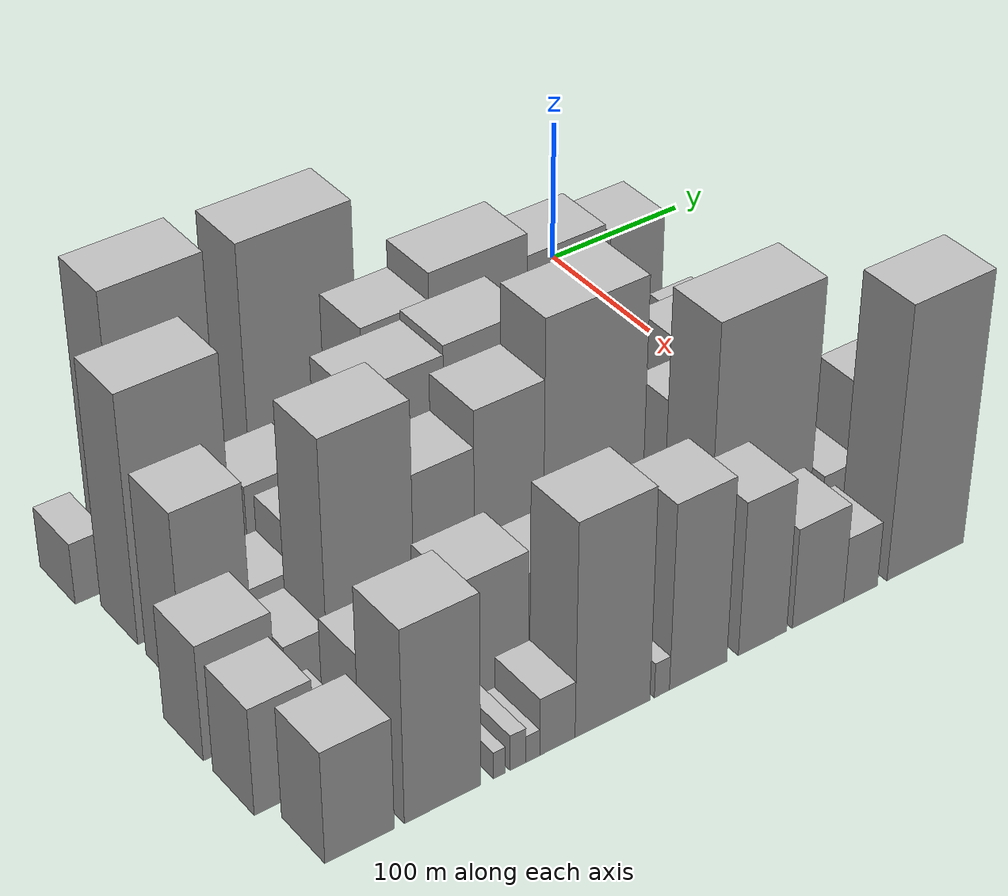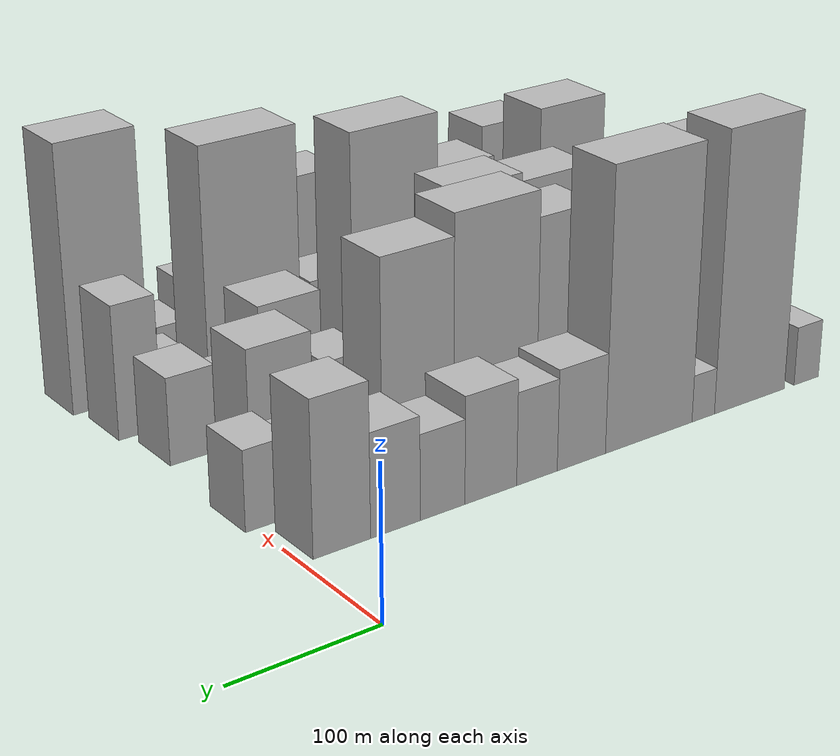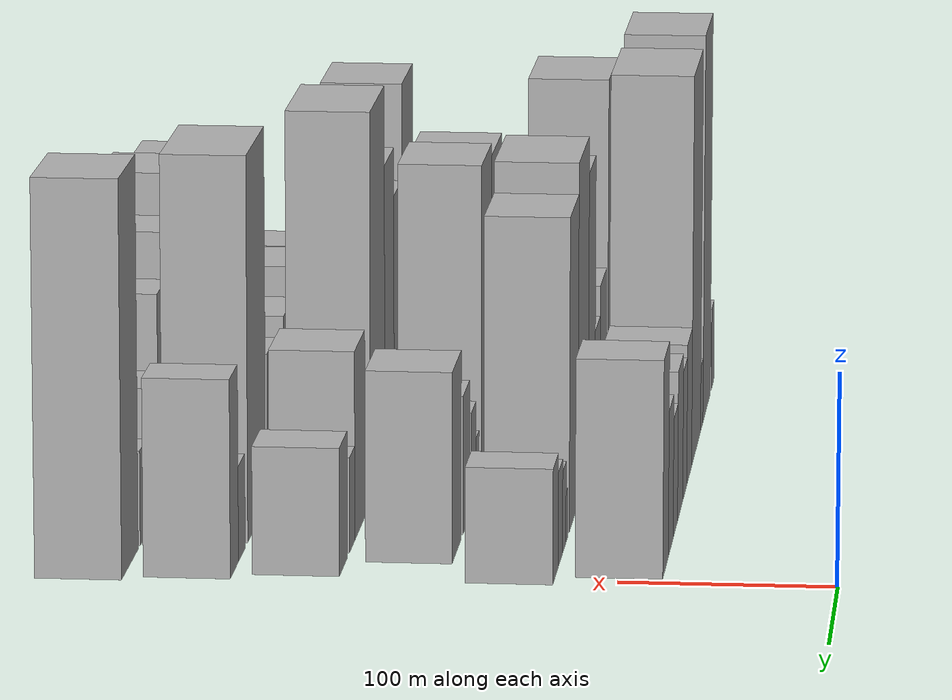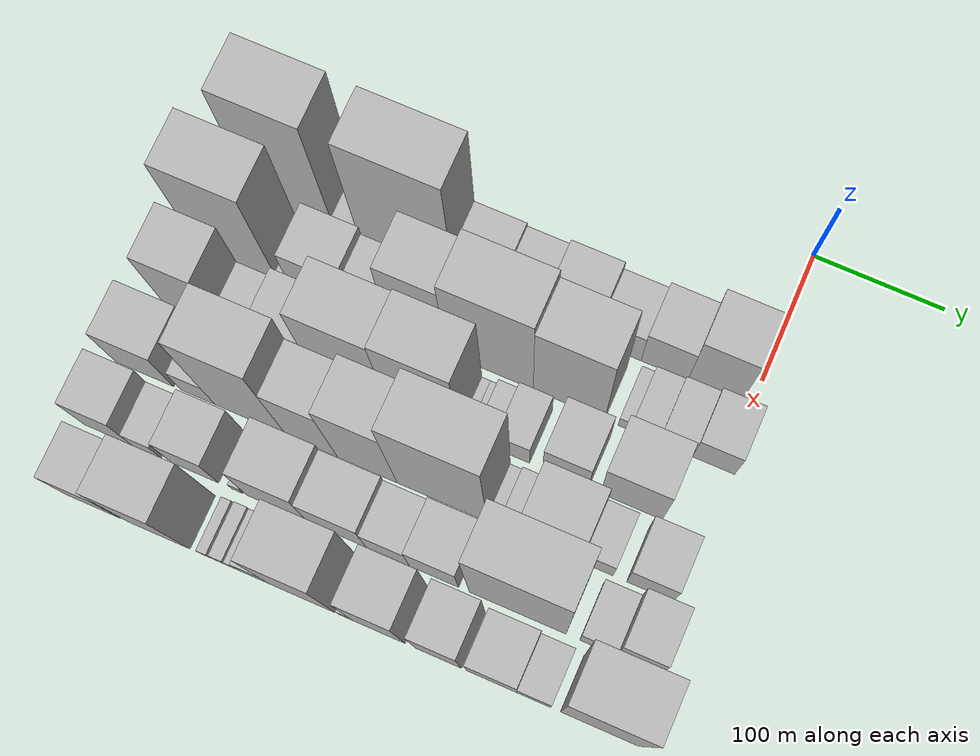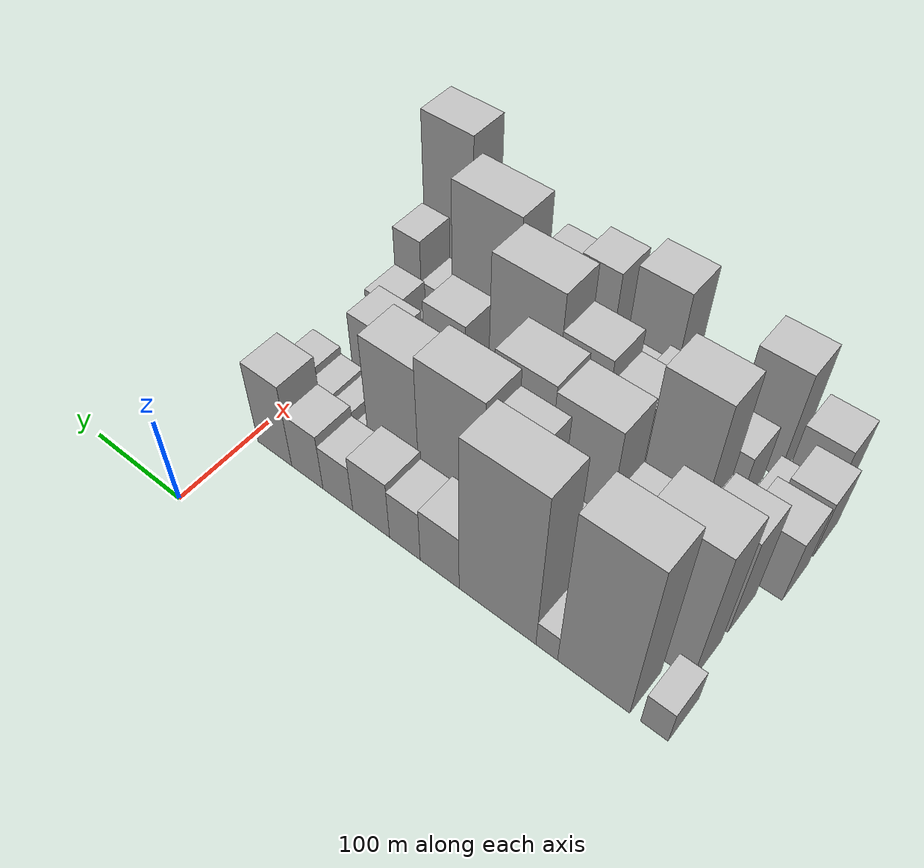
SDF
<sdf version="1.6">
 <world name="default">
  <model name="building_11">
   <static>1</static>
   <pose>100.0000 -402.8972 0 0.000000 0.000000 0.000000</pose>
   <link name="link">
    <pose>0 0 21.00 0 0 0</pose>
    <collision name="collision"><geometry><box><size>40.0000 22.8785 42.0000</size></box></geometry></collision>
    <visual name="visual">
     <cast_shadows>0</cast_shadows>
     <geometry><box><size>40.0000 22.8785 42.0000</size></box></geometry>
     <material>
      <script>
       <uri>model://HANNAS_wall/materials/scripts</uri>
       <uri>model://HANNAS_wall/materials/textures</uri>
       <name>vrc/HANNAS_wall</name>
      </script>
     </material>
    </visual>
   </link>
  </model>
  <model name="building_12">
   <static>1</static>
   <pose>100.0000 -350.8258 0 0.000000 0.000000 0.000000</pose>
   <link name="link">
    <pose>0 0 97.50 0 0 0</pose>
    <collision name="collision"><geometry><box><size>40.0000 63.2641 195.0000</size></box></geometry></collision>
    <visual name="visual">
     <cast_shadows>0</cast_shadows>
     <geometry><box><size>40.0000 63.2641 195.0000</size></box></geometry>
     <material>
      <script>
       <uri>model://HANNAS_wall/materials/scripts</uri>
       <uri>model://HANNAS_wall/materials/textures</uri>
       <name>vrc/HANNAS_wall</name>
      </script>
     </material>
    </visual>
   </link>
  </model>
  <model name="building_13">
   <static>1</static>
   <pose>100.0000 -309.3553 0 0.000000 0.000000 0.000000</pose>
   <link name="link">
    <pose>0 0 16.50 0 0 0</pose>
    <collision name="collision"><geometry><box><size>40.0000 19.6770 33.0000</size></box></geometry></collision>
    <visual name="visual">
     <cast_shadows>0</cast_shadows>
     <geometry><box><size>40.0000 19.6770 33.0000</size></box></geometry>
     <material>
      <script>
       <uri>model://HANNAS_wall/materials/scripts</uri>
       <uri>model://HANNAS_wall/materials/textures</uri>
       <name>vrc/HANNAS_wall</name>
      </script>
     </material>
    </visual>
   </link>
  </model>
  <model name="building_14">
   <static>1</static>
   <pose>100.0000 -262.9560 0 0.000000 0.000000 0.000000</pose>
   <link name="link">
    <pose>0 0 96.00 0 0 0</pose>
    <collision name="collision"><geometry><box><size>40.0000 73.1216 192.0000</size></box></geometry></collision>
    <visual name="visual">
     <cast_shadows>0</cast_shadows>
     <geometry><box><size>40.0000 73.1216 192.0000</size></box></geometry>
     <material>
      <script>
       <uri>model://HANNAS_wall/materials/scripts</uri>
       <uri>model://HANNAS_wall/materials/textures</uri>
       <name>vrc/HANNAS_wall</name>
      </script>
     </material>
    </visual>
   </link>
  </model>
  <model name="building_15">
   <static>1</static>
   <pose>100.0000 -206.9353 0 0.000000 0.000000 0.000000</pose>
   <link name="link">
    <pose>0 0 34.50 0 0 0</pose>
    <collision name="collision"><geometry><box><size>40.0000 38.9199 69.0000</size></box></geometry></collision>
    <visual name="visual">
     <cast_shadows>0</cast_shadows>
     <geometry><box><size>40.0000 38.9199 69.0000</size></box></geometry>
     <material>
      <script>
       <uri>model://HANNAS_wall/materials/scripts</uri>
       <uri>model://HANNAS_wall/materials/textures</uri>
       <name>vrc/HANNAS_wall</name>
      </script>
     </material>
    </visual>
   </link>
  </model>
  <model name="building_16">
   <static>1</static>
   <pose>100.0000 -171.5780 0 0.000000 0.000000 0.000000</pose>
   <link name="link">
    <pose>0 0 31.50 0 0 0</pose>
    <collision name="collision"><geometry><box><size>40.0000 31.7946 63.0000</size></box></geometry></collision>
    <visual name="visual">
     <cast_shadows>0</cast_shadows>
     <geometry><box><size>40.0000 31.7946 63.0000</size></box></geometry>
     <material>
      <script>
       <uri>model://HANNAS_wall/materials/scripts</uri>
       <uri>model://HANNAS_wall/materials/textures</uri>
       <name>vrc/HANNAS_wall</name>
      </script>
     </material>
    </visual>
   </link>
  </model>
  <model name="building_17">
   <static>1</static>
   <pose>100.0000 -135.9647 0 0.000000 0.000000 0.000000</pose>
   <link name="link">
    <pose>0 0 36.00 0 0 0</pose>
    <collision name="collision"><geometry><box><size>40.0000 39.4321 72.0000</size></box></geometry></collision>
    <visual name="visual">
     <cast_shadows>0</cast_shadows>
     <geometry><box><size>40.0000 39.4321 72.0000</size></box></geometry>
     <material>
      <script>
       <uri>model://HANNAS_wall/materials/scripts</uri>
       <uri>model://HANNAS_wall/materials/textures</uri>
       <name>vrc/HANNAS_wall</name>
      </script>
     </material>
    </visual>
   </link>
  </model>
  <model name="building_18">
   <static>1</static>
   <pose>100.0000 -99.7300 0 0.000000 0.000000 0.000000</pose>
   <link name="link">
    <pose>0 0 28.50 0 0 0</pose>
    <collision name="collision"><geometry><box><size>40.0000 33.0373 57.0000</size></box></geometry></collision>
    <visual name="visual">
     <cast_shadows>0</cast_shadows>
     <geometry><box><size>40.0000 33.0373 57.0000</size></box></geometry>
     <material>
      <script>
       <uri>model://HANNAS_wall/materials/scripts</uri>
       <uri>model://HANNAS_wall/materials/textures</uri>
       <name>vrc/HANNAS_wall</name>
      </script>
     </material>
    </visual>
   </link>
  </model>
  <model name="building_19">
   <static>1</static>
   <pose>100.0000 -65.4250 0 0.000000 0.000000 0.000000</pose>
   <link name="link">
    <pose>0 0 34.50 0 0 0</pose>
    <collision name="collision"><geometry><box><size>40.0000 35.5727 69.0000</size></box></geometry></collision>
    <visual name="visual">
     <cast_shadows>0</cast_shadows>
     <geometry><box><size>40.0000 35.5727 69.0000</size></box></geometry>
     <material>
      <script>
       <uri>model://HANNAS_wall/materials/scripts</uri>
       <uri>model://HANNAS_wall/materials/textures</uri>
       <name>vrc/HANNAS_wall</name>
      </script>
     </material>
    </visual>
   </link>
  </model>
  <model name="building_20">
   <static>1</static>
   <pose>100.0000 -27.6505 0 0.000000 0.000000 0.000000</pose>
   <link name="link">
    <pose>0 0 51.00 0 0 0</pose>
    <collision name="collision"><geometry><box><size>40.0000 39.9763 102.0000</size></box></geometry></collision>
    <visual name="visual">
     <cast_shadows>0</cast_shadows>
     <geometry><box><size>40.0000 39.9763 102.0000</size></box></geometry>
     <material>
      <script>
       <uri>model://HANNAS_wall/materials/scripts</uri>
       <uri>model://HANNAS_wall/materials/textures</uri>
       <name>vrc/HANNAS_wall</name>
      </script>
     </material>
    </visual>
   </link>
  </model>
  <model name="building_53">
   <static>1</static>
   <pose>149.0000 -372.3541 0 0.000000 0.000000 0.000000</pose>
   <link name="link">
    <pose>0 0 84.00 0 0 0</pose>
    <collision name="collision"><geometry><box><size>40.0000 61.9415 168.0000</size></box></geometry></collision>
    <visual name="visual">
     <cast_shadows>0</cast_shadows>
     <geometry><box><size>40.0000 61.9415 168.0000</size></box></geometry>
     <material>
      <script>
       <uri>model://HANNAS_wall/materials/scripts</uri>
       <uri>model://HANNAS_wall/materials/textures</uri>
       <name>vrc/HANNAS_wall</name>
      </script>
     </material>
    </visual>
   </link>
  </model>
  <model name="building_54">
   <static>1</static>
   <pose>149.0000 -336.5656 0 0.000000 0.000000 0.000000</pose>
   <link name="link">
    <pose>0 0 10.50 0 0 0</pose>
    <collision name="collision"><geometry><box><size>40.0000 9.6356 21.0000</size></box></geometry></collision>
    <visual name="visual">
     <cast_shadows>0</cast_shadows>
     <geometry><box><size>40.0000 9.6356 21.0000</size></box></geometry>
     <material>
      <script>
       <uri>model://HANNAS_wall/materials/scripts</uri>
       <uri>model://HANNAS_wall/materials/textures</uri>
       <name>vrc/HANNAS_wall</name>
      </script>
     </material>
    </visual>
   </link>
  </model>
  <model name="building_55">
   <static>1</static>
   <pose>149.0000 -310.3386 0 0.000000 0.000000 0.000000</pose>
   <link name="link">
    <pose>0 0 37.50 0 0 0</pose>
    <collision name="collision"><geometry><box><size>40.0000 42.8184 75.0000</size></box></geometry></collision>
    <visual name="visual">
     <cast_shadows>0</cast_shadows>
     <geometry><box><size>40.0000 42.8184 75.0000</size></box></geometry>
     <material>
      <script>
       <uri>model://HANNAS_wall/materials/scripts</uri>
       <uri>model://HANNAS_wall/materials/textures</uri>
       <name>vrc/HANNAS_wall</name>
      </script>
     </material>
    </visual>
   </link>
  </model>
  <model name="building_56">
   <static>1</static>
   <pose>149.0000 -271.6990 0 0.000000 0.000000 0.000000</pose>
   <link name="link">
    <pose>0 0 30.00 0 0 0</pose>
    <collision name="collision"><geometry><box><size>40.0000 34.4609 60.0000</size></box></geometry></collision>
    <visual name="visual">
     <cast_shadows>0</cast_shadows>
     <geometry><box><size>40.0000 34.4609 60.0000</size></box></geometry>
     <material>
      <script>
       <uri>model://HANNAS_wall/materials/scripts</uri>
       <uri>model://HANNAS_wall/materials/textures</uri>
       <name>vrc/HANNAS_wall</name>
      </script>
     </material>
    </visual>
   </link>
  </model>
  <model name="building_57">
   <static>1</static>
   <pose>149.0000 -232.3263 0 0.000000 0.000000 0.000000</pose>
   <link name="link">
    <pose>0 0 73.50 0 0 0</pose>
    <collision name="collision"><geometry><box><size>40.0000 44.2844 147.0000</size></box></geometry></collision>
    <visual name="visual">
     <cast_shadows>0</cast_shadows>
     <geometry><box><size>40.0000 44.2844 147.0000</size></box></geometry>
     <material>
      <script>
       <uri>model://HANNAS_wall/materials/scripts</uri>
       <uri>model://HANNAS_wall/materials/textures</uri>
       <name>vrc/HANNAS_wall</name>
      </script>
     </material>
    </visual>
   </link>
  </model>
  <model name="building_58">
   <static>1</static>
   <pose>149.0000 -177.3243 0 0.000000 0.000000 0.000000</pose>
   <link name="link">
    <pose>0 0 82.50 0 0 0</pose>
    <collision name="collision"><geometry><box><size>40.0000 65.7196 165.0000</size></box></geometry></collision>
    <visual name="visual">
     <cast_shadows>0</cast_shadows>
     <geometry><box><size>40.0000 65.7196 165.0000</size></box></geometry>
     <material>
      <script>
       <uri>model://HANNAS_wall/materials/scripts</uri>
       <uri>model://HANNAS_wall/materials/textures</uri>
       <name>vrc/HANNAS_wall</name>
      </script>
     </material>
    </visual>
   </link>
  </model>
  <model name="building_59">
   <static>1</static>
   <pose>149.0000 -117.3568 0 0.000000 0.000000 0.000000</pose>
   <link name="link">
    <pose>0 0 75.00 0 0 0</pose>
    <collision name="collision"><geometry><box><size>40.0000 54.2154 150.0000</size></box></geometry></collision>
    <visual name="visual">
     <cast_shadows>0</cast_shadows>
     <geometry><box><size>40.0000 54.2154 150.0000</size></box></geometry>
     <material>
      <script>
       <uri>model://HANNAS_wall/materials/scripts</uri>
       <uri>model://HANNAS_wall/materials/textures</uri>
       <name>vrc/HANNAS_wall</name>
      </script>
     </material>
    </visual>
   </link>
  </model>
  <model name="building_60">
   <static>1</static>
   <pose>149.0000 -75.4414 0 0.000000 0.000000 0.000000</pose>
   <link name="link">
    <pose>0 0 12.00 0 0 0</pose>
    <collision name="collision"><geometry><box><size>40.0000 9.6153 24.0000</size></box></geometry></collision>
    <visual name="visual">
     <cast_shadows>0</cast_shadows>
     <geometry><box><size>40.0000 9.6153 24.0000</size></box></geometry>
     <material>
      <script>
       <uri>model://HANNAS_wall/materials/scripts</uri>
       <uri>model://HANNAS_wall/materials/textures</uri>
       <name>vrc/HANNAS_wall</name>
      </script>
     </material>
    </visual>
   </link>
  </model>
  <model name="building_61">
   <static>1</static>
   <pose>149.0000 -60.0867 0 0.000000 0.000000 0.000000</pose>
   <link name="link">
    <pose>0 0 19.50 0 0 0</pose>
    <collision name="collision"><geometry><box><size>40.0000 21.0940 39.0000</size></box></geometry></collision>
    <visual name="visual">
     <cast_shadows>0</cast_shadows>
     <geometry><box><size>40.0000 21.0940 39.0000</size></box></geometry>
     <material>
      <script>
       <uri>model://HANNAS_wall/materials/scripts</uri>
       <uri>model://HANNAS_wall/materials/textures</uri>
       <name>vrc/HANNAS_wall</name>
      </script>
     </material>
    </visual>
   </link>
  </model>
  <model name="building_62">
   <static>1</static>
   <pose>149.0000 -36.8996 0 0.000000 0.000000 0.000000</pose>
   <link name="link">
    <pose>0 0 22.50 0 0 0</pose>
    <collision name="collision"><geometry><box><size>40.0000 25.2804 45.0000</size></box></geometry></collision>
    <visual name="visual">
     <cast_shadows>0</cast_shadows>
     <geometry><box><size>40.0000 25.2804 45.0000</size></box></geometry>
     <material>
      <script>
       <uri>model://HANNAS_wall/materials/scripts</uri>
       <uri>model://HANNAS_wall/materials/textures</uri>
       <name>vrc/HANNAS_wall</name>
      </script>
     </material>
    </visual>
   </link>
  </model>
  <model name="building_63">
   <static>1</static>
   <pose>149.0000 -8.5068 0 0.000000 0.000000 0.000000</pose>
   <link name="link">
    <pose>0 0 27.00 0 0 0</pose>
    <collision name="collision"><geometry><box><size>40.0000 31.5051 54.0000</size></box></geometry></collision>
    <visual name="visual">
     <cast_shadows>0</cast_shadows>
     <geometry><box><size>40.0000 31.5051 54.0000</size></box></geometry>
     <material>
      <script>
       <uri>model://HANNAS_wall/materials/scripts</uri>
       <uri>model://HANNAS_wall/materials/textures</uri>
       <name>vrc/HANNAS_wall</name>
      </script>
     </material>
    </visual>
   </link>
  </model>
  <model name="building_99">
   <static>1</static>
   <pose>198.0000 -381.9283 0 0.000000 0.000000 0.000000</pose>
   <link name="link">
    <pose>0 0 61.50 0 0 0</pose>
    <collision name="collision"><geometry><box><size>40.0000 43.0516 123.0000</size></box></geometry></collision>
    <visual name="visual">
     <cast_shadows>0</cast_shadows>
     <geometry><box><size>40.0000 43.0516 123.0000</size></box></geometry>
     <material>
      <script>
       <uri>model://HANNAS_wall/materials/scripts</uri>
       <uri>model://HANNAS_wall/materials/textures</uri>
       <name>vrc/HANNAS_wall</name>
      </script>
     </material>
    </visual>
   </link>
  </model>
  <model name="building_100">
   <static>1</static>
   <pose>198.0000 -345.7250 0 0.000000 0.000000 0.000000</pose>
   <link name="link">
    <pose>0 0 25.50 0 0 0</pose>
    <collision name="collision"><geometry><box><size>40.0000 29.3549 51.0000</size></box></geometry></collision>
    <visual name="visual">
     <cast_shadows>0</cast_shadows>
     <geometry><box><size>40.0000 29.3549 51.0000</size></box></geometry>
     <material>
      <script>
       <uri>model://HANNAS_wall/materials/scripts</uri>
       <uri>model://HANNAS_wall/materials/textures</uri>
       <name>vrc/HANNAS_wall</name>
      </script>
     </material>
    </visual>
   </link>
  </model>
  <model name="building_101">
   <static>1</static>
   <pose>198.0000 -311.5931 0 0.000000 0.000000 0.000000</pose>
   <link name="link">
    <pose>0 0 37.50 0 0 0</pose>
    <collision name="collision"><geometry><box><size>40.0000 38.9090 75.0000</size></box></geometry></collision>
    <visual name="visual">
     <cast_shadows>0</cast_shadows>
     <geometry><box><size>40.0000 38.9090 75.0000</size></box></geometry>
     <material>
      <script>
       <uri>model://HANNAS_wall/materials/scripts</uri>
       <uri>model://HANNAS_wall/materials/textures</uri>
       <name>vrc/HANNAS_wall</name>
      </script>
     </material>
    </visual>
   </link>
  </model>
  <model name="building_102">
   <static>1</static>
   <pose>198.0000 -263.4743 0 0.000000 0.000000 0.000000</pose>
   <link name="link">
    <pose>0 0 75.00 0 0 0</pose>
    <collision name="collision"><geometry><box><size>40.0000 57.3286 150.0000</size></box></geometry></collision>
    <visual name="visual">
     <cast_shadows>0</cast_shadows>
     <geometry><box><size>40.0000 57.3286 150.0000</size></box></geometry>
     <material>
      <script>
       <uri>model://HANNAS_wall/materials/scripts</uri>
       <uri>model://HANNAS_wall/materials/textures</uri>
       <name>vrc/HANNAS_wall</name>
      </script>
     </material>
    </visual>
   </link>
  </model>
  <model name="building_103">
   <static>1</static>
   <pose>198.0000 -207.0733 0 0.000000 0.000000 0.000000</pose>
   <link name="link">
    <pose>0 0 78.00 0 0 0</pose>
    <collision name="collision"><geometry><box><size>40.0000 55.4735 156.0000</size></box></geometry></collision>
    <visual name="visual">
     <cast_shadows>0</cast_shadows>
     <geometry><box><size>40.0000 55.4735 156.0000</size></box></geometry>
     <material>
      <script>
       <uri>model://HANNAS_wall/materials/scripts</uri>
       <uri>model://HANNAS_wall/materials/textures</uri>
       <name>vrc/HANNAS_wall</name>
      </script>
     </material>
    </visual>
   </link>
  </model>
  <model name="building_104">
   <static>1</static>
   <pose>198.0000 -176.0456 0 0.000000 0.000000 0.000000</pose>
   <link name="link">
    <pose>0 0 7.50 0 0 0</pose>
    <collision name="collision"><geometry><box><size>40.0000 6.5820 15.0000</size></box></geometry></collision>
    <visual name="visual">
     <cast_shadows>0</cast_shadows>
     <geometry><box><size>40.0000 6.5820 15.0000</size></box></geometry>
     <material>
      <script>
       <uri>model://HANNAS_wall/materials/scripts</uri>
       <uri>model://HANNAS_wall/materials/textures</uri>
       <name>vrc/HANNAS_wall</name>
      </script>
     </material>
    </visual>
   </link>
  </model>
  <model name="building_105">
   <static>1</static>
   <pose>198.0000 -169.6641 0 0.000000 0.000000 0.000000</pose>
   <link name="link">
    <pose>0 0 7.50 0 0 0</pose>
    <collision name="collision"><geometry><box><size>40.0000 6.1809 15.0000</size></box></geometry></collision>
    <visual name="visual">
     <cast_shadows>0</cast_shadows>
     <geometry><box><size>40.0000 6.1809 15.0000</size></box></geometry>
     <material>
      <script>
       <uri>model://HANNAS_wall/materials/scripts</uri>
       <uri>model://HANNAS_wall/materials/textures</uri>
       <name>vrc/HANNAS_wall</name>
      </script>
     </material>
    </visual>
   </link>
  </model>
  <model name="building_106">
   <static>1</static>
   <pose>198.0000 -158.7678 0 0.000000 0.000000 0.000000</pose>
   <link name="link">
    <pose>0 0 15.00 0 0 0</pose>
    <collision name="collision"><geometry><box><size>40.0000 15.6117 30.0000</size></box></geometry></collision>
    <visual name="visual">
     <cast_shadows>0</cast_shadows>
     <geometry><box><size>40.0000 15.6117 30.0000</size></box></geometry>
     <material>
      <script>
       <uri>model://HANNAS_wall/materials/scripts</uri>
       <uri>model://HANNAS_wall/materials/textures</uri>
       <name>vrc/HANNAS_wall</name>
      </script>
     </material>
    </visual>
   </link>
  </model>
  <model name="building_107">
   <static>1</static>
   <pose>198.0000 -138.5536 0 0.000000 0.000000 0.000000</pose>
   <link name="link">
    <pose>0 0 24.00 0 0 0</pose>
    <collision name="collision"><geometry><box><size>40.0000 24.8169 48.0000</size></box></geometry></collision>
    <visual name="visual">
     <cast_shadows>0</cast_shadows>
     <geometry><box><size>40.0000 24.8169 48.0000</size></box></geometry>
     <material>
      <script>
       <uri>model://HANNAS_wall/materials/scripts</uri>
       <uri>model://HANNAS_wall/materials/textures</uri>
       <name>vrc/HANNAS_wall</name>
      </script>
     </material>
    </visual>
   </link>
  </model>
  <model name="building_108">
   <static>1</static>
   <pose>198.0000 -99.0071 0 0.000000 0.000000 0.000000</pose>
   <link name="link">
    <pose>0 0 33.00 0 0 0</pose>
    <collision name="collision"><geometry><box><size>40.0000 34.2761 66.0000</size></box></geometry></collision>
    <visual name="visual">
     <cast_shadows>0</cast_shadows>
     <geometry><box><size>40.0000 34.2761 66.0000</size></box></geometry>
     <material>
      <script>
       <uri>model://HANNAS_wall/materials/scripts</uri>
       <uri>model://HANNAS_wall/materials/textures</uri>
       <name>vrc/HANNAS_wall</name>
      </script>
     </material>
    </visual>
   </link>
  </model>
  <model name="building_109">
   <static>1</static>
   <pose>198.0000 -49.8459 0 0.000000 0.000000 0.000000</pose>
   <link name="link">
    <pose>0 0 45.00 0 0 0</pose>
    <collision name="collision"><geometry><box><size>40.0000 46.0464 90.0000</size></box></geometry></collision>
    <visual name="visual">
     <cast_shadows>0</cast_shadows>
     <geometry><box><size>40.0000 46.0464 90.0000</size></box></geometry>
     <material>
      <script>
       <uri>model://HANNAS_wall/materials/scripts</uri>
       <uri>model://HANNAS_wall/materials/textures</uri>
       <name>vrc/HANNAS_wall</name>
      </script>
     </material>
    </visual>
   </link>
  </model>
  <model name="building_146">
   <static>1</static>
   <pose>247.0000 -398.7872 0 0.000000 0.000000 0.000000</pose>
   <link name="link">
    <pose>0 0 39.00 0 0 0</pose>
    <collision name="collision"><geometry><box><size>40.0000 45.1380 78.0000</size></box></geometry></collision>
    <visual name="visual">
     <cast_shadows>0</cast_shadows>
     <geometry><box><size>40.0000 45.1380 78.0000</size></box></geometry>
     <material>
      <script>
       <uri>model://HANNAS_wall/materials/scripts</uri>
       <uri>model://HANNAS_wall/materials/textures</uri>
       <name>vrc/HANNAS_wall</name>
      </script>
     </material>
    </visual>
   </link>
  </model>
  <model name="building_147">
   <static>1</static>
   <pose>247.0000 -357.1700 0 0.000000 0.000000 0.000000</pose>
   <link name="link">
    <pose>0 0 25.50 0 0 0</pose>
    <collision name="collision"><geometry><box><size>40.0000 26.0964 51.0000</size></box></geometry></collision>
    <visual name="visual">
     <cast_shadows>0</cast_shadows>
     <geometry><box><size>40.0000 26.0964 51.0000</size></box></geometry>
     <material>
      <script>
       <uri>model://HANNAS_wall/materials/scripts</uri>
       <uri>model://HANNAS_wall/materials/textures</uri>
       <name>vrc/HANNAS_wall</name>
      </script>
     </material>
    </visual>
   </link>
  </model>
  <model name="building_148">
   <static>1</static>
   <pose>247.0000 -316.5506 0 0.000000 0.000000 0.000000</pose>
   <link name="link">
    <pose>0 0 87.00 0 0 0</pose>
    <collision name="collision"><geometry><box><size>40.0000 55.1424 174.0000</size></box></geometry></collision>
    <visual name="visual">
     <cast_shadows>0</cast_shadows>
     <geometry><box><size>40.0000 55.1424 174.0000</size></box></geometry>
     <material>
      <script>
       <uri>model://HANNAS_wall/materials/scripts</uri>
       <uri>model://HANNAS_wall/materials/textures</uri>
       <name>vrc/HANNAS_wall</name>
      </script>
     </material>
    </visual>
   </link>
  </model>
  <model name="building_149">
   <static>1</static>
   <pose>247.0000 -269.4540 0 0.000000 0.000000 0.000000</pose>
   <link name="link">
    <pose>0 0 63.00 0 0 0</pose>
    <collision name="collision"><geometry><box><size>40.0000 39.0508 126.0000</size></box></geometry></collision>
    <visual name="visual">
     <cast_shadows>0</cast_shadows>
     <geometry><box><size>40.0000 39.0508 126.0000</size></box></geometry>
     <material>
      <script>
       <uri>model://HANNAS_wall/materials/scripts</uri>
       <uri>model://HANNAS_wall/materials/textures</uri>
       <name>vrc/HANNAS_wall</name>
      </script>
     </material>
    </visual>
   </link>
  </model>
  <model name="building_150">
   <static>1</static>
   <pose>247.0000 -227.1837 0 0.000000 0.000000 0.000000</pose>
   <link name="link">
    <pose>0 0 75.00 0 0 0</pose>
    <collision name="collision"><geometry><box><size>40.0000 45.4898 150.0000</size></box></geometry></collision>
    <visual name="visual">
     <cast_shadows>0</cast_shadows>
     <geometry><box><size>40.0000 45.4898 150.0000</size></box></geometry>
     <material>
      <script>
       <uri>model://HANNAS_wall/materials/scripts</uri>
       <uri>model://HANNAS_wall/materials/textures</uri>
       <name>vrc/HANNAS_wall</name>
      </script>
     </material>
    </visual>
   </link>
  </model>
  <model name="building_151">
   <static>1</static>
   <pose>247.0000 -170.5272 0 0.000000 0.000000 0.000000</pose>
   <link name="link">
    <pose>0 0 94.50 0 0 0</pose>
    <collision name="collision"><geometry><box><size>40.0000 67.8233 189.0000</size></box></geometry></collision>
    <visual name="visual">
     <cast_shadows>0</cast_shadows>
     <geometry><box><size>40.0000 67.8233 189.0000</size></box></geometry>
     <material>
      <script>
       <uri>model://HANNAS_wall/materials/scripts</uri>
       <uri>model://HANNAS_wall/materials/textures</uri>
       <name>vrc/HANNAS_wall</name>
      </script>
     </material>
    </visual>
   </link>
  </model>
  <model name="building_152">
   <static>1</static>
   <pose>247.0000 -132.0170 0 0.000000 0.000000 0.000000</pose>
   <link name="link">
    <pose>0 0 10.50 0 0 0</pose>
    <collision name="collision"><geometry><box><size>40.0000 9.1971 21.0000</size></box></geometry></collision>
    <visual name="visual">
     <cast_shadows>0</cast_shadows>
     <geometry><box><size>40.0000 9.1971 21.0000</size></box></geometry>
     <material>
      <script>
       <uri>model://HANNAS_wall/materials/scripts</uri>
       <uri>model://HANNAS_wall/materials/textures</uri>
       <name>vrc/HANNAS_wall</name>
      </script>
     </material>
    </visual>
   </link>
  </model>
  <model name="building_153">
   <static>1</static>
   <pose>247.0000 -119.7778 0 0.000000 0.000000 0.000000</pose>
   <link name="link">
    <pose>0 0 15.00 0 0 0</pose>
    <collision name="collision"><geometry><box><size>40.0000 15.2812 30.0000</size></box></geometry></collision>
    <visual name="visual">
     <cast_shadows>0</cast_shadows>
     <geometry><box><size>40.0000 15.2812 30.0000</size></box></geometry>
     <material>
      <script>
       <uri>model://HANNAS_wall/materials/scripts</uri>
       <uri>model://HANNAS_wall/materials/textures</uri>
       <name>vrc/HANNAS_wall</name>
      </script>
     </material>
    </visual>
   </link>
  </model>
  <model name="building_154">
   <static>1</static>
   <pose>247.0000 -88.9787 0 0.000000 0.000000 0.000000</pose>
   <link name="link">
    <pose>0 0 45.00 0 0 0</pose>
    <collision name="collision"><geometry><box><size>40.0000 46.3170 90.0000</size></box></geometry></collision>
    <visual name="visual">
     <cast_shadows>0</cast_shadows>
     <geometry><box><size>40.0000 46.3170 90.0000</size></box></geometry>
     <material>
      <script>
       <uri>model://HANNAS_wall/materials/scripts</uri>
       <uri>model://HANNAS_wall/materials/textures</uri>
       <name>vrc/HANNAS_wall</name>
      </script>
     </material>
    </visual>
   </link>
  </model>
  <model name="building_155">
   <static>1</static>
   <pose>247.0000 -54.3977 0 0.000000 0.000000 0.000000</pose>
   <link name="link">
    <pose>0 0 22.50 0 0 0</pose>
    <collision name="collision"><geometry><box><size>40.0000 22.8451 45.0000</size></box></geometry></collision>
    <visual name="visual">
     <cast_shadows>0</cast_shadows>
     <geometry><box><size>40.0000 22.8451 45.0000</size></box></geometry>
     <material>
      <script>
       <uri>model://HANNAS_wall/materials/scripts</uri>
       <uri>model://HANNAS_wall/materials/textures</uri>
       <name>vrc/HANNAS_wall</name>
      </script>
     </material>
    </visual>
   </link>
  </model>
  <model name="building_156">
   <static>1</static>
   <pose>247.0000 -15.9281 0 0.000000 0.000000 0.000000</pose>
   <link name="link">
    <pose>0 0 30.00 0 0 0</pose>
    <collision name="collision"><geometry><box><size>40.0000 34.0941 60.0000</size></box></geometry></collision>
    <visual name="visual">
     <cast_shadows>0</cast_shadows>
     <geometry><box><size>40.0000 34.0941 60.0000</size></box></geometry>
     <material>
      <script>
       <uri>model://HANNAS_wall/materials/scripts</uri>
       <uri>model://HANNAS_wall/materials/textures</uri>
       <name>vrc/HANNAS_wall</name>
      </script>
     </material>
    </visual>
   </link>
  </model>
  <model name="building_190">
   <static>1</static>
   <pose>296.0000 -402.3594 0 0.000000 0.000000 0.000000</pose>
   <link name="link">
    <pose>0 0 36.00 0 0 0</pose>
    <collision name="collision"><geometry><box><size>40.0000 37.4114 72.0000</size></box></geometry></collision>
    <visual name="visual">
     <cast_shadows>0</cast_shadows>
     <geometry><box><size>40.0000 37.4114 72.0000</size></box></geometry>
     <material>
      <script>
       <uri>model://HANNAS_wall/materials/scripts</uri>
       <uri>model://HANNAS_wall/materials/textures</uri>
       <name>vrc/HANNAS_wall</name>
      </script>
     </material>
    </visual>
   </link>
  </model>
  <model name="building_191">
   <static>1</static>
   <pose>296.0000 -372.7680 0 0.000000 0.000000 0.000000</pose>
   <link name="link">
    <pose>0 0 19.50 0 0 0</pose>
    <collision name="collision"><geometry><box><size>40.0000 21.7715 39.0000</size></box></geometry></collision>
    <visual name="visual">
     <cast_shadows>0</cast_shadows>
     <geometry><box><size>40.0000 21.7715 39.0000</size></box></geometry>
     <material>
      <script>
       <uri>model://HANNAS_wall/materials/scripts</uri>
       <uri>model://HANNAS_wall/materials/textures</uri>
       <name>vrc/HANNAS_wall</name>
      </script>
     </material>
    </visual>
   </link>
  </model>
  <model name="building_192">
   <static>1</static>
   <pose>296.0000 -335.7785 0 0.000000 0.000000 0.000000</pose>
   <link name="link">
    <pose>0 0 34.50 0 0 0</pose>
    <collision name="collision"><geometry><box><size>40.0000 36.2075 69.0000</size></box></geometry></collision>
    <visual name="visual">
     <cast_shadows>0</cast_shadows>
     <geometry><box><size>40.0000 36.2075 69.0000</size></box></geometry>
     <material>
      <script>
       <uri>model://HANNAS_wall/materials/scripts</uri>
       <uri>model://HANNAS_wall/materials/textures</uri>
       <name>vrc/HANNAS_wall</name>
      </script>
     </material>
    </visual>
   </link>
  </model>
  <model name="building_193">
   <static>1</static>
   <pose>296.0000 -303.4332 0 0.000000 0.000000 0.000000</pose>
   <link name="link">
    <pose>0 0 9.00 0 0 0</pose>
    <collision name="collision"><geometry><box><size>40.0000 8.4830 18.0000</size></box></geometry></collision>
    <visual name="visual">
     <cast_shadows>0</cast_shadows>
     <geometry><box><size>40.0000 8.4830 18.0000</size></box></geometry>
     <material>
      <script>
       <uri>model://HANNAS_wall/materials/scripts</uri>
       <uri>model://HANNAS_wall/materials/textures</uri>
       <name>vrc/HANNAS_wall</name>
      </script>
     </material>
    </visual>
   </link>
  </model>
  <model name="building_194">
   <static>1</static>
   <pose>296.0000 -273.1181 0 0.000000 0.000000 0.000000</pose>
   <link name="link">
    <pose>0 0 45.00 0 0 0</pose>
    <collision name="collision"><geometry><box><size>40.0000 46.1473 90.0000</size></box></geometry></collision>
    <visual name="visual">
     <cast_shadows>0</cast_shadows>
     <geometry><box><size>40.0000 46.1473 90.0000</size></box></geometry>
     <material>
      <script>
       <uri>model://HANNAS_wall/materials/scripts</uri>
       <uri>model://HANNAS_wall/materials/textures</uri>
       <name>vrc/HANNAS_wall</name>
      </script>
     </material>
    </visual>
   </link>
  </model>
  <model name="building_195">
   <static>1</static>
   <pose>296.0000 -227.8144 0 0.000000 0.000000 0.000000</pose>
   <link name="link">
    <pose>0 0 37.50 0 0 0</pose>
    <collision name="collision"><geometry><box><size>40.0000 44.4601 75.0000</size></box></geometry></collision>
    <visual name="visual">
     <cast_shadows>0</cast_shadows>
     <geometry><box><size>40.0000 44.4601 75.0000</size></box></geometry>
     <material>
      <script>
       <uri>model://HANNAS_wall/materials/scripts</uri>
       <uri>model://HANNAS_wall/materials/textures</uri>
       <name>vrc/HANNAS_wall</name>
      </script>
     </material>
    </visual>
   </link>
  </model>
  <model name="building_196">
   <static>1</static>
   <pose>296.0000 -189.2918 0 0.000000 0.000000 0.000000</pose>
   <link name="link">
    <pose>0 0 30.00 0 0 0</pose>
    <collision name="collision"><geometry><box><size>40.0000 32.5852 60.0000</size></box></geometry></collision>
    <visual name="visual">
     <cast_shadows>0</cast_shadows>
     <geometry><box><size>40.0000 32.5852 60.0000</size></box></geometry>
     <material>
      <script>
       <uri>model://HANNAS_wall/materials/scripts</uri>
       <uri>model://HANNAS_wall/materials/textures</uri>
       <name>vrc/HANNAS_wall</name>
      </script>
     </material>
    </visual>
   </link>
  </model>
  <model name="building_197">
   <static>1</static>
   <pose>296.0000 -154.6946 0 0.000000 0.000000 0.000000</pose>
   <link name="link">
    <pose>0 0 36.00 0 0 0</pose>
    <collision name="collision"><geometry><box><size>40.0000 36.6090 72.0000</size></box></geometry></collision>
    <visual name="visual">
     <cast_shadows>0</cast_shadows>
     <geometry><box><size>40.0000 36.6090 72.0000</size></box></geometry>
     <material>
      <script>
       <uri>model://HANNAS_wall/materials/scripts</uri>
       <uri>model://HANNAS_wall/materials/textures</uri>
       <name>vrc/HANNAS_wall</name>
      </script>
     </material>
    </visual>
   </link>
  </model>
  <model name="building_198">
   <static>1</static>
   <pose>296.0000 -92.6761 0 0.000000 0.000000 0.000000</pose>
   <link name="link">
    <pose>0 0 91.50 0 0 0</pose>
    <collision name="collision"><geometry><box><size>40.0000 71.4280 183.0000</size></box></geometry></collision>
    <visual name="visual">
     <cast_shadows>0</cast_shadows>
     <geometry><box><size>40.0000 71.4280 183.0000</size></box></geometry>
     <material>
      <script>
       <uri>model://HANNAS_wall/materials/scripts</uri>
       <uri>model://HANNAS_wall/materials/textures</uri>
       <name>vrc/HANNAS_wall</name>
      </script>
     </material>
    </visual>
   </link>
  </model>
  <model name="building_199">
   <static>1</static>
   <pose>296.0000 -33.8753 0 0.000000 0.000000 0.000000</pose>
   <link name="link">
    <pose>0 0 22.50 0 0 0</pose>
    <collision name="collision"><geometry><box><size>40.0000 26.1737 45.0000</size></box></geometry></collision>
    <visual name="visual">
     <cast_shadows>0</cast_shadows>
     <geometry><box><size>40.0000 26.1737 45.0000</size></box></geometry>
     <material>
      <script>
       <uri>model://HANNAS_wall/materials/scripts</uri>
       <uri>model://HANNAS_wall/materials/textures</uri>
       <name>vrc/HANNAS_wall</name>
      </script>
     </material>
    </visual>
   </link>
  </model>
  <model name="building_200">
   <static>1</static>
   <pose>296.0000 -5.2798 0 0.000000 0.000000 0.000000</pose>
   <link name="link">
    <pose>0 0 46.50 0 0 0</pose>
    <collision name="collision"><geometry><box><size>40.0000 31.0172 93.0000</size></box></geometry></collision>
    <visual name="visual">
     <cast_shadows>0</cast_shadows>
     <geometry><box><size>40.0000 31.0172 93.0000</size></box></geometry>
     <material>
      <script>
       <uri>model://HANNAS_wall/materials/scripts</uri>
       <uri>model://HANNAS_wall/materials/textures</uri>
       <name>vrc/HANNAS_wall</name>
      </script>
     </material>
    </visual>
   </link>
  </model>
  <model name="building_234">
   <static>1</static>
   <pose>345.0000 -389.7117 0 0.000000 0.000000 0.000000</pose>
   <link name="link">
    <pose>0 0 37.50 0 0 0</pose>
    <collision name="collision"><geometry><box><size>40.0000 41.4968 75.0000</size></box></geometry></collision>
    <visual name="visual">
     <cast_shadows>0</cast_shadows>
     <geometry><box><size>40.0000 41.4968 75.0000</size></box></geometry>
     <material>
      <script>
       <uri>model://HANNAS_wall/materials/scripts</uri>
       <uri>model://HANNAS_wall/materials/textures</uri>
       <name>vrc/HANNAS_wall</name>
      </script>
     </material>
    </visual>
   </link>
  </model>
  <model name="building_235">
   <static>1</static>
   <pose>345.0000 -339.4167 0 0.000000 0.000000 0.000000</pose>
   <link name="link">
    <pose>0 0 64.50 0 0 0</pose>
    <collision name="collision"><geometry><box><size>40.0000 47.0932 129.0000</size></box></geometry></collision>
    <visual name="visual">
     <cast_shadows>0</cast_shadows>
     <geometry><box><size>40.0000 47.0932 129.0000</size></box></geometry>
     <material>
      <script>
       <uri>model://HANNAS_wall/materials/scripts</uri>
       <uri>model://HANNAS_wall/materials/textures</uri>
       <name>vrc/HANNAS_wall</name>
      </script>
     </material>
    </visual>
   </link>
  </model>
  <model name="building_236">
   <static>1</static>
   <pose>345.0000 -304.1196 0 0.000000 0.000000 0.000000</pose>
   <link name="link">
    <pose>0 0 9.00 0 0 0</pose>
    <collision name="collision"><geometry><box><size>40.0000 7.5011 18.0000</size></box></geometry></collision>
    <visual name="visual">
     <cast_shadows>0</cast_shadows>
     <geometry><box><size>40.0000 7.5011 18.0000</size></box></geometry>
     <material>
      <script>
       <uri>model://HANNAS_wall/materials/scripts</uri>
       <uri>model://HANNAS_wall/materials/textures</uri>
       <name>vrc/HANNAS_wall</name>
      </script>
     </material>
    </visual>
   </link>
  </model>
  <model name="building_237">
   <static>1</static>
   <pose>345.0000 -292.3564 0 0.000000 0.000000 0.000000</pose>
   <link name="link">
    <pose>0 0 12.00 0 0 0</pose>
    <collision name="collision"><geometry><box><size>40.0000 10.0253 24.0000</size></box></geometry></collision>
    <visual name="visual">
     <cast_shadows>0</cast_shadows>
     <geometry><box><size>40.0000 10.0253 24.0000</size></box></geometry>
     <material>
      <script>
       <uri>model://HANNAS_wall/materials/scripts</uri>
       <uri>model://HANNAS_wall/materials/textures</uri>
       <name>vrc/HANNAS_wall</name>
      </script>
     </material>
    </visual>
   </link>
  </model>
  <model name="building_238">
   <static>1</static>
   <pose>345.0000 -282.9112 0 0.000000 0.000000 0.000000</pose>
   <link name="link">
    <pose>0 0 9.00 0 0 0</pose>
    <collision name="collision"><geometry><box><size>40.0000 8.8650 18.0000</size></box></geometry></collision>
    <visual name="visual">
     <cast_shadows>0</cast_shadows>
     <geometry><box><size>40.0000 8.8650 18.0000</size></box></geometry>
     <material>
      <script>
       <uri>model://HANNAS_wall/materials/scripts</uri>
       <uri>model://HANNAS_wall/materials/textures</uri>
       <name>vrc/HANNAS_wall</name>
      </script>
     </material>
    </visual>
   </link>
  </model>
  <model name="building_239">
   <static>1</static>
   <pose>345.0000 -267.1530 0 0.000000 0.000000 0.000000</pose>
   <link name="link">
    <pose>0 0 19.50 0 0 0</pose>
    <collision name="collision"><geometry><box><size>40.0000 22.6514 39.0000</size></box></geometry></collision>
    <visual name="visual">
     <cast_shadows>0</cast_shadows>
     <geometry><box><size>40.0000 22.6514 39.0000</size></box></geometry>
     <material>
      <script>
       <uri>model://HANNAS_wall/materials/scripts</uri>
       <uri>model://HANNAS_wall/materials/textures</uri>
       <name>vrc/HANNAS_wall</name>
      </script>
     </material>
    </visual>
   </link>
  </model>
  <model name="building_240">
   <static>1</static>
   <pose>345.0000 -231.1942 0 0.000000 0.000000 0.000000</pose>
   <link name="link">
    <pose>0 0 72.00 0 0 0</pose>
    <collision name="collision"><geometry><box><size>40.0000 49.2662 144.0000</size></box></geometry></collision>
    <visual name="visual">
     <cast_shadows>0</cast_shadows>
     <geometry><box><size>40.0000 49.2662 144.0000</size></box></geometry>
     <material>
      <script>
       <uri>model://HANNAS_wall/materials/scripts</uri>
       <uri>model://HANNAS_wall/materials/textures</uri>
       <name>vrc/HANNAS_wall</name>
      </script>
     </material>
    </visual>
   </link>
  </model>
  <model name="building_241">
   <static>1</static>
   <pose>345.0000 -198.5082 0 0.000000 0.000000 0.000000</pose>
   <link name="link">
    <pose>0 0 12.00 0 0 0</pose>
    <collision name="collision"><geometry><box><size>40.0000 10.1060 24.0000</size></box></geometry></collision>
    <visual name="visual">
     <cast_shadows>0</cast_shadows>
     <geometry><box><size>40.0000 10.1060 24.0000</size></box></geometry>
     <material>
      <script>
       <uri>model://HANNAS_wall/materials/scripts</uri>
       <uri>model://HANNAS_wall/materials/textures</uri>
       <name>vrc/HANNAS_wall</name>
      </script>
     </material>
    </visual>
   </link>
  </model>
  <model name="building_242">
   <static>1</static>
   <pose>345.0000 -173.9175 0 0.000000 0.000000 0.000000</pose>
   <link name="link">
    <pose>0 0 63.00 0 0 0</pose>
    <collision name="collision"><geometry><box><size>40.0000 39.0754 126.0000</size></box></geometry></collision>
    <visual name="visual">
     <cast_shadows>0</cast_shadows>
     <geometry><box><size>40.0000 39.0754 126.0000</size></box></geometry>
     <material>
      <script>
       <uri>model://HANNAS_wall/materials/scripts</uri>
       <uri>model://HANNAS_wall/materials/textures</uri>
       <name>vrc/HANNAS_wall</name>
      </script>
     </material>
    </visual>
   </link>
  </model>
  <model name="building_243">
   <static>1</static>
   <pose>345.0000 -129.4771 0 0.000000 0.000000 0.000000</pose>
   <link name="link">
    <pose>0 0 52.50 0 0 0</pose>
    <collision name="collision"><geometry><box><size>40.0000 33.8054 105.0000</size></box></geometry></collision>
    <visual name="visual">
     <cast_shadows>0</cast_shadows>
     <geometry><box><size>40.0000 33.8054 105.0000</size></box></geometry>
     <material>
      <script>
       <uri>model://HANNAS_wall/materials/scripts</uri>
       <uri>model://HANNAS_wall/materials/textures</uri>
       <name>vrc/HANNAS_wall</name>
      </script>
     </material>
    </visual>
   </link>
  </model>
  <model name="building_244">
   <static>1</static>
   <pose>345.0000 -90.1970 0 0.000000 0.000000 0.000000</pose>
   <link name="link">
    <pose>0 0 34.50 0 0 0</pose>
    <collision name="collision"><geometry><box><size>40.0000 36.7547 69.0000</size></box></geometry></collision>
    <visual name="visual">
     <cast_shadows>0</cast_shadows>
     <geometry><box><size>40.0000 36.7547 69.0000</size></box></geometry>
     <material>
      <script>
       <uri>model://HANNAS_wall/materials/scripts</uri>
       <uri>model://HANNAS_wall/materials/textures</uri>
       <name>vrc/HANNAS_wall</name>
      </script>
     </material>
    </visual>
   </link>
  </model>
  <model name="building_245">
   <static>1</static>
   <pose>345.0000 -59.5451 0 0.000000 0.000000 0.000000</pose>
   <link name="link">
    <pose>0 0 22.50 0 0 0</pose>
    <collision name="collision"><geometry><box><size>40.0000 24.5490 45.0000</size></box></geometry></collision>
    <visual name="visual">
     <cast_shadows>0</cast_shadows>
     <geometry><box><size>40.0000 24.5490 45.0000</size></box></geometry>
     <material>
      <script>
       <uri>model://HANNAS_wall/materials/scripts</uri>
       <uri>model://HANNAS_wall/materials/textures</uri>
       <name>vrc/HANNAS_wall</name>
      </script>
     </material>
    </visual>
   </link>
  </model>
  <model name="building_246">
   <static>1</static>
   <pose>345.0000 -11.7309 0 0.000000 0.000000 0.000000</pose>
   <link name="link">
    <pose>0 0 93.00 0 0 0</pose>
    <collision name="collision"><geometry><box><size>40.0000 57.0795 186.0000</size></box></geometry></collision>
    <visual name="visual">
     <cast_shadows>0</cast_shadows>
     <geometry><box><size>40.0000 57.0795 186.0000</size></box></geometry>
     <material>
      <script>
       <uri>model://HANNAS_wall/materials/scripts</uri>
       <uri>model://HANNAS_wall/materials/textures</uri>
       <name>vrc/HANNAS_wall</name>
      </script>
     </material>
    </visual>
   </link>
  </model>
 </world>
</sdf>
